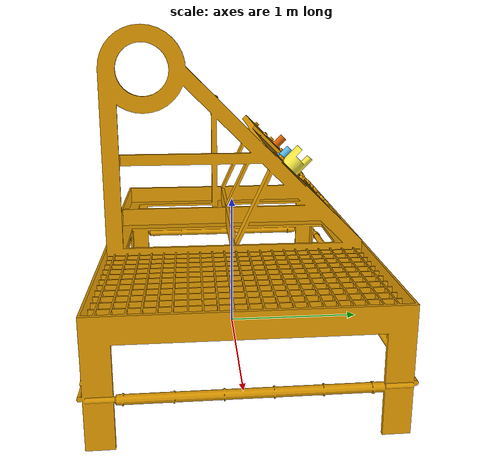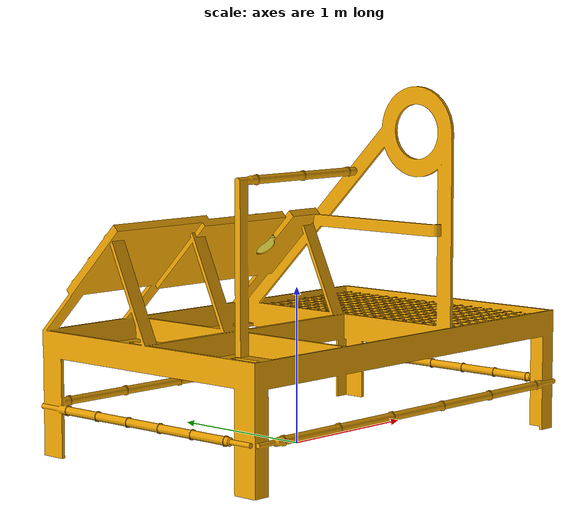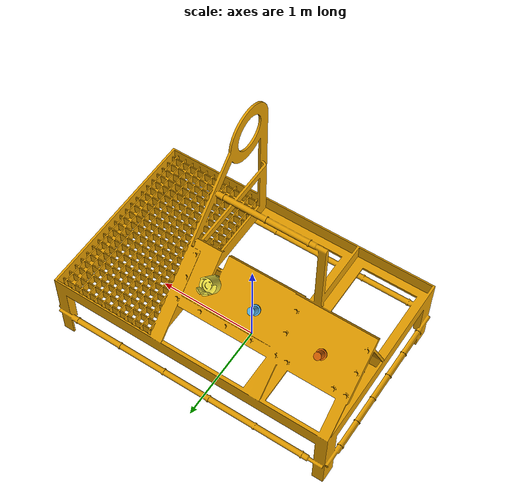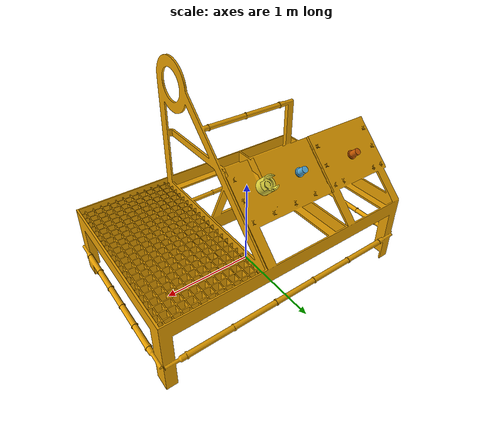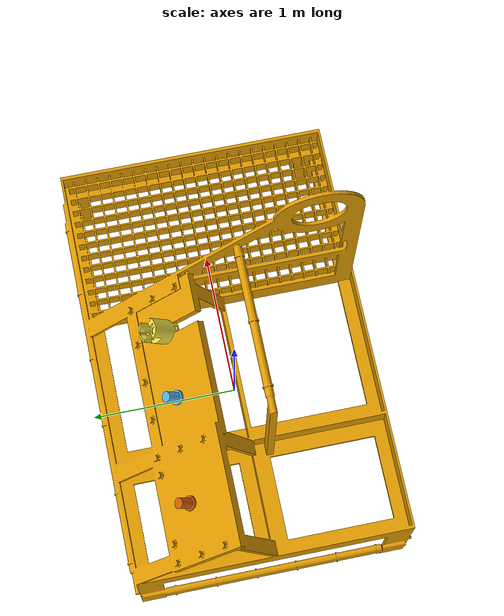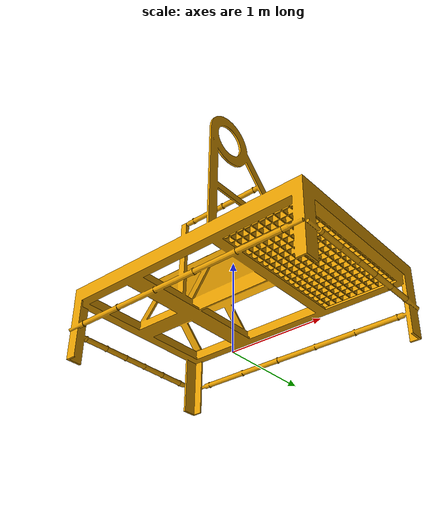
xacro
<?xml version="1.0"?>

<robot xmlns:xacro="http://www.ros.org/wiki/xacro" name="socket">

  <xacro:include filename="$(find plug_and_socket_description)/urdf/m_to_f_socket.xacro"/>
  <xacro:include filename="$(find plug_and_socket_description)/urdf/f_to_m_receptacle.xacro"/>

  <link name="socket_platform_link">
      <inertial name="socket_platform_inertial">
        <mass value="500"/>
        <origin xyz="0 0 0" rpy="0 0 0"/>
        <inertia ixx="750" ixy="0" ixz="0"
                 iyy="195" iyz="0" izz="750"/>
        <origin xyz="0 0 0" rpy="0 0 0"/>
      </inertial>
      <visual name="socket_platform_visual">
        <geometry>
          <mesh filename="package://dave_object_models/models/electrical_panel/meshes/Underwater-Frame.dae" scale="1 1 1"/>
        </geometry>
        <origin xyz="0 0 0" rpy="0 0 ${pi}"/>
      </visual>
      <collision name="socket_platform_collision">
        <geometry>
          <mesh filename="package://dave_object_models/models/electrical_panel/meshes/COLLISION-Underwater-Frame.dae" scale="1 1 1"/>
        </geometry>
        <origin xyz="0 0 0" rpy="0 0 ${pi}"/>
      </collision>
  </link>

  <!-- Generate the sockets & attach them to the platform link -->
  <xacro:f_to_m_receptacle_macro
    name="receptacle1" xyz="0 0 0"
    plug_model_name="f_to_m_plug" plug_link_name="f_to_m_plug" roll_tolerance="0.3"
    pitch_tolerance="0.1" yaw_tolerance="0.1"
    mating_force="25" unmating_force="125"/>

  <!-- Revolute joint gets accurately loaded into Gazebo -->
  <joint name="receptacle1_joint" type="revolute">
    <limit effort="1.0" lower="0.0" upper="0.0" velocity="0.0"/>
    <origin xyz="-0.31 0.424 1.254" rpy="0 ${-pi/4} ${pi/2}"/>
    <parent link="socket_platform_link"/>
    <child link="receptacle1_link"/>
  </joint>

  <xacro:m_to_f_socket_macro
    name="socket2" xyz="0 0 0"
    plug_model_name="m_to_f_plug" plug_link_name="m_to_f_plug" roll_tolerance="0.3"
    pitch_tolerance="0.3" yaw_tolerance="0.3"
    mating_force="25" unmating_force="125"/>

  <joint name="socket2_joint" type="revolute">
    <limit effort="1.0" lower="0.0" upper="0.0" velocity="0.0"/>
    <origin xyz="0.125 0.475 1.315" rpy="0 ${-pi/4} ${pi/2}"/>
    <parent link="socket_platform_link"/>
    <child link="socket2_link"/>
  </joint>

  <xacro:f_to_m_receptacle_macro
    name="receptacle3" xyz="0 0 0"
    plug_model_name="f_to_m_plug" plug_link_name="f_to_m_plug" roll_tolerance="0.3"
    pitch_tolerance="0.1" yaw_tolerance="0.1"
    mating_force="25" unmating_force="125"/>

  <joint name="receptacle3_joint" type="revolute">
    <limit effort="1.0" lower="0.0" upper="0.0" velocity="0.0"/>
    <origin xyz="-0.98 0.475 1.245" rpy="0 ${-pi/4} ${pi/2}"/>
    <parent link="socket_platform_link"/>
    <child link="receptacle3_link"/>
  </joint>

</robot>

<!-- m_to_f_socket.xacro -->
<robot xmlns:xacro="http://www.ros.org/wiki/xacro">

  <xacro:macro name="m_to_f_socket_macro"
               params="name xyz plug_model_name plug_link_name
                       roll_tolerance pitch_tolerance yaw_tolerance
                       mating_force unmating_force">

    <!-- Socket tube link -->
    <link name="${name}_link">
      <inertial>
        <mass value="0.5"/>
        <origin xyz="0 0 0" rpy="0 0 0"/>
        <inertia ixx="0.00001" ixy="0" ixz="0"
                 iyy="0.00001" iyz="0" izz="0.00003"/>
      </inertial>
      <visual>
        <geometry>
          <mesh filename="package://dave_object_models/models/m_to_f_socket/meshes/Electrical-Socket.dae" scale="0.12 0.12 0.12"/>
        </geometry>
        <origin xyz="0 0 0" rpy="0 0 ${-pi/2}"/>
      </visual>
      <collision>
        <geometry>
          <mesh filename="package://dave_object_models/models/m_to_f_socket/meshes/Electrical-Socket.dae" scale="0.12 0.12 0.12"/>
        </geometry>
        <origin xyz="0 0 0" rpy="0 0 ${-pi/2}"/>
      </collision>
    </link>

    <!-- Socket sensor plate link (not visible) -->
    <link name="${name}_sensor_link">
      <inertial>
        <mass value="0.001"/>
        <origin xyz="0 0 0" rpy="${pi} 0 0"/>
        <inertia ixx="0.0000001" ixy="0" ixz="0"
                 iyy="0.0000001" iyz="0" izz="0.0000003"/>
      </inertial>
      <collision>
        <geometry>
          <cylinder length="0.01" radius="0.06"/>
        </geometry>
        <origin xyz="0.01 0 0" rpy="0 ${-pi/2} 0"/>
      </collision>
    </link>

    <!-- Connect the socket and sensor plate links -->
    <joint name="${name}_sensor_joint" type="revolute">
      <limit effort="1.0" lower="0.0" upper="0.0" velocity="0.0"/>
      <origin xyz="${xyz}" rpy="0 0 0"/>
      <parent link="${name}_link"/>
      <child link="${name}_sensor_link"/>
    </joint>

    <!-- Generate the model plugin for the socket -->
    <gazebo>
      <plugin name="${name}_plugin" filename="libplugAndSocketPlugin.so">
        <socketTubeLink>${name}_link</socketTubeLink>
        <sensorPlateLink>${name}_sensor_link</sensorPlateLink>
        <plugModel>${plug_model_name}</plugModel>
        <plugLink>${plug_link_name}</plugLink>
        <rollAlignmentTolerance>${roll_tolerance}</rollAlignmentTolerance>
        <pitchAlignmentTolerance>${pitch_tolerance}</pitchAlignmentTolerance>
        <yawAlignmentTolerance>${yaw_tolerance}</yawAlignmentTolerance>
        <matingForce>${mating_force}</matingForce>
        <unmatingForce>${unmating_force}</unmatingForce>
      </plugin>
    </gazebo>

  </xacro:macro>

</robot>

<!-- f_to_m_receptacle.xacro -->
<robot xmlns:xacro="http://www.ros.org/wiki/xacro">

  <xacro:macro name="f_to_m_receptacle_macro"
               params="name xyz plug_model_name plug_link_name
                       roll_tolerance pitch_tolerance yaw_tolerance
                       mating_force unmating_force">

    <!-- Receptacle tube link -->
    <link name="${name}_link">
      <inertial>
        <mass value="0.5"/>
        <origin xyz="0 0 0" rpy="0 0 0"/>
        <inertia ixx="0.00001" ixy="0" ixz="0"
                 iyy="0.00001" iyz="0" izz="0.00003"/>
      </inertial>
      <visual>
        <geometry>
          <!-- Smaller scale than plug to make the fit more forgiving -->
          <mesh filename="package://dave_object_models/models/f_to_m_receptacle/meshes/Plug-Receptacle.dae"
                scale="0.365 0.375 0.375"/>
        </geometry>
        <origin xyz="0 0 0" rpy="${pi/2} 0 ${pi/2}"/>
      </visual>
      <collision>
        <geometry>
          <mesh filename="package://dave_object_models/models/f_to_m_receptacle/meshes/COLLISION-Plug-Receptacle.dae"
                scale="0.365 0.375 0.375"/>
        </geometry>
        <origin xyz="0 0 0" rpy="${pi/2} 0 ${pi/2}"/>
      </collision>
    </link>

    <!-- Receptacle sensor plate link (not visible) -->
    <link name="${name}_sensor_link">
      <inertial>
        <mass value="0.001"/>
        <origin xyz="0 0 0" rpy="${pi} 0 0"/>
        <inertia ixx="0.0000001" ixy="0" ixz="0"
                 iyy="0.0000001" iyz="0" izz="0.0000003"/>
      </inertial>
      <collision>
        <geometry>
          <cylinder length="0.01" radius="0.06"/>
        </geometry>
        <origin xyz="0.01 0 0" rpy="0 ${-pi/2} 0"/>
      </collision>
    </link>

    <!-- Connect the socket and sensor plate links -->
    <joint name="${name}_sensor_joint" type="revolute">
      <limit effort="1.0" lower="0.0" upper="0.0" velocity="0.0"/>
      <origin xyz="${xyz}" rpy="0 0 0"/>
      <parent link="${name}_link"/>
      <child link="${name}_sensor_link"/>
    </joint>

    <!-- Generate the model plugin for the socket -->
    <gazebo>
      <plugin name="${name}_plugin" filename="libplugAndSocketPlugin.so">
        <socketTubeLink>${name}_link</socketTubeLink>
        <sensorPlateLink>${name}_sensor_link</sensorPlateLink>
        <plugModel>${plug_model_name}</plugModel>
        <plugLink>${plug_link_name}</plugLink>
        <rollAlignmentTolerance>${roll_tolerance}</rollAlignmentTolerance>
        <pitchAlignmentTolerance>${pitch_tolerance}</pitchAlignmentTolerance>
        <yawAlignmentTolerance>${yaw_tolerance}</yawAlignmentTolerance>
        <matingForce>${mating_force}</matingForce>
        <unmatingForce>${unmating_force}</unmatingForce>
      </plugin>
    </gazebo>

  </xacro:macro>

</robot>
